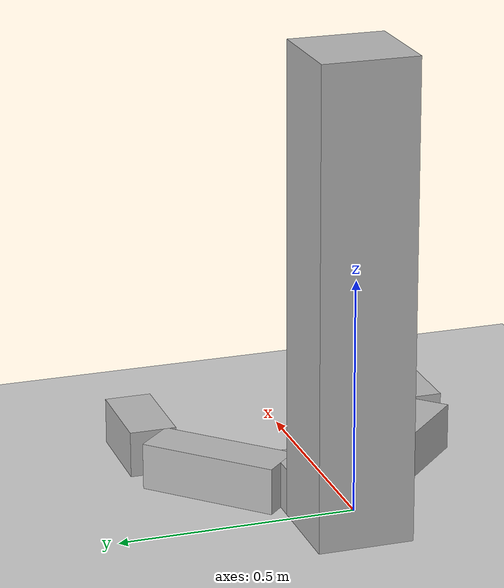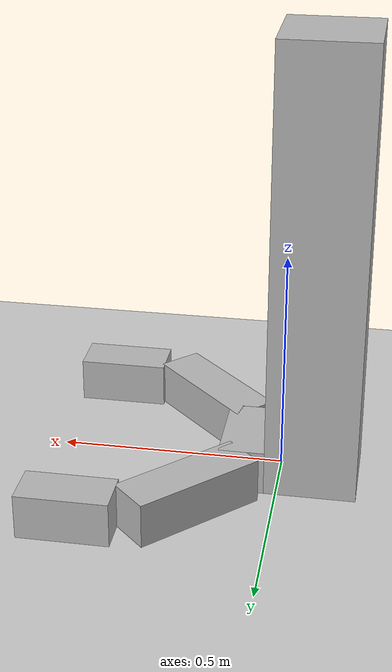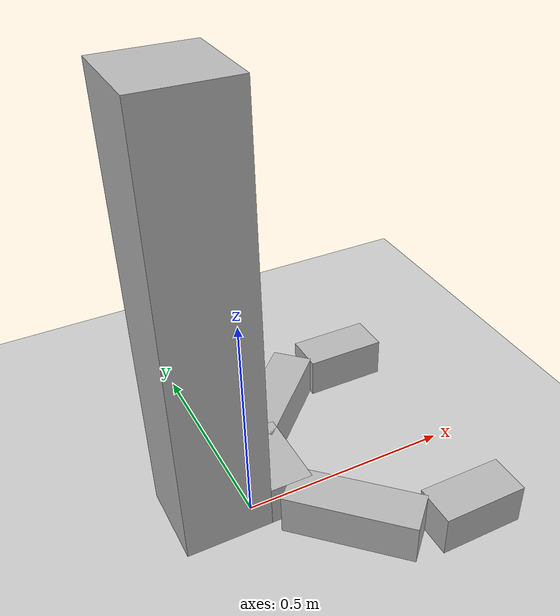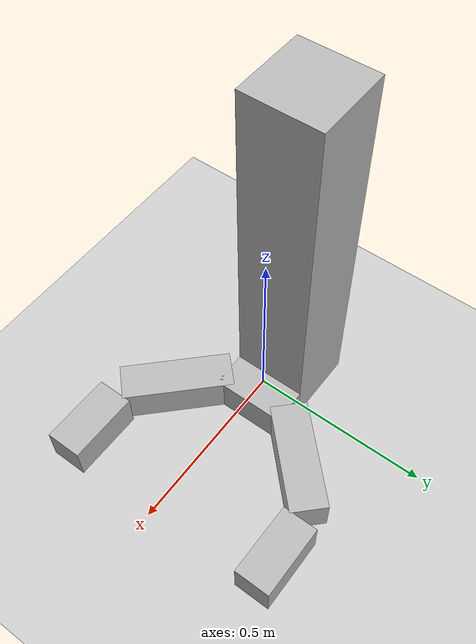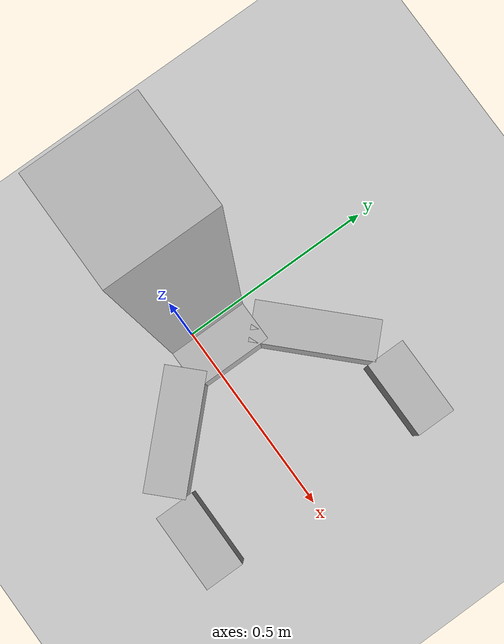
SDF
<sdf version="1.6">
 <world name="default">
  <model name="ground_plane">
   <static>1</static>
   <link name="link">
    <collision name="collision">
     <geometry><plane><normal>0 0 1</normal><size>100 100</size></plane></geometry>
     <surface><friction><ode><mu>100</mu><mu2>50</mu2></ode></friction></surface>
    </collision>
    <visual name="visual">
     <cast_shadows>0</cast_shadows>
     <geometry><plane><normal>0 0 1</normal><size>100 100</size></plane></geometry>
     <material>
      <script><uri>file://media/materials/scripts/gazebo.material</uri><name>Gazebo/Grey</name></script>
     </material>
    </visual>
   </link>
  </model>
  <light name="sun" type="directional">
   <pose>0 0 10 0 -0 0</pose>
   <diffuse>0.8 0.8 0.8 1</diffuse>
   <specular>0.2 0.2 0.2 1</specular>
   <attenuation>
    <range>1000</range>
    <constant>0.9</constant>
    <linear>0.01</linear>
    <quadratic>0.001</quadratic>
   </attenuation>
   <direction>-0.5 0.1 -0.9</direction>
  </light>
  <gravity>0 0 -9.8</gravity>
  <magnetic_field>6e-06 2.3e-05 -4.2e-05</magnetic_field>
  <atmosphere type="adiabatic"/>
  <physics name="default_physics" default="0" type="ode">
   <max_step_size>0.001</max_step_size>
   <real_time_factor>1</real_time_factor>
   <real_time_update_rate>1000</real_time_update_rate>
  </physics>
  <scene><ambient>0.4 0.4 0.4 1</ambient><background>0.7 0.7 0.7 1</background><shadows>1</shadows></scene>
  <audio><device>default</device></audio>
  <spherical_coordinates>
   <surface_model>EARTH_WGS84</surface_model>
   <latitude_deg>0</latitude_deg>
   <longitude_deg>0</longitude_deg>
   <elevation>0</elevation>
   <heading_deg>0</heading_deg>
  </spherical_coordinates>
  <model name="gripper_model">
   <link name="riser">
    <pose>-0.15 0 0.5 0 -0 0</pose>
    <inertial>
     <pose>0 0 -0.5 0 -0 0</pose>
     <inertia><ixx>0.01</ixx><ixy>0</ixy><ixz>0</ixz><iyy>0.01</iyy><iyz>0</iyz><izz>0.01</izz></inertia>
     <mass>10</mass>
    </inertial>
    <collision name="collision"><geometry><box><size>0.2 0.2 1</size></box></geometry></collision>
    <visual name="visual">
     <geometry><box><size>0.2 0.2 1</size></box></geometry>
     <material><script><uri>__default__</uri><name>__default__</name></script></material>
    </visual>
   </link>
   <link name="palm">
    <pose>0 0 0.05 0 -0 0</pose>
    <inertial>
     <inertia><ixx>0.01</ixx><ixy>0</ixy><ixz>0</ixz><iyy>0.01</iyy><iyz>0</iyz><izz>0.01</izz></inertia>
     <mass>0.5</mass>
    </inertial>
    <collision name="collision"><geometry><box><size>0.1 0.2 0.1</size></box></geometry></collision>
    <visual name="visual">
     <geometry><box><size>0.1 0.2 0.1</size></box></geometry>
     <material><script><uri>__default__</uri><name>__default__</name></script></material>
    </visual>
   </link>
   <link name="left_finger">
    <pose>0.1 0.2 0.05 0 0 -0.78539</pose>
    <inertial>
     <inertia><ixx>0.01</ixx><ixy>0</ixy><ixz>0</ixz><iyy>0.01</iyy><iyz>0</iyz><izz>0.01</izz></inertia>
     <mass>0.1</mass>
    </inertial>
    <collision name="collision"><geometry><box><size>0.1 0.3 0.1</size></box></geometry></collision>
    <visual name="visual">
     <geometry><box><size>0.1 0.3 0.1</size></box></geometry>
     <material><script><uri>__default__</uri><name>__default__</name></script></material>
    </visual>
   </link>
   <link name="left_finger_tip">
    <pose>0.336 0.3 0.05 0 -0 1.5707</pose>
    <inertial>
     <inertia><ixx>0.01</ixx><ixy>0</ixy><ixz>0</ixz><iyy>0.01</iyy><iyz>0</iyz><izz>0.01</izz></inertia>
     <mass>0.1</mass>
    </inertial>
    <collision name="collision"><geometry><box><size>0.1 0.2 0.1</size></box></geometry></collision>
    <visual name="visual">
     <geometry><box><size>0.1 0.2 0.1</size></box></geometry>
     <material><script><uri>__default__</uri><name>__default__</name></script></material>
    </visual>
   </link>
   <link name="right_finger">
    <pose>0.1 -0.2 0.05 0 -0 0.78539</pose>
    <inertial>
     <inertia><ixx>0.01</ixx><ixy>0</ixy><ixz>0</ixz><iyy>0.01</iyy><iyz>0</iyz><izz>0.01</izz></inertia>
     <mass>0.1</mass>
    </inertial>
    <collision name="collision"><geometry><box><size>0.1 0.3 0.1</size></box></geometry></collision>
    <visual name="visual">
     <geometry><box><size>0.1 0.3 0.1</size></box></geometry>
     <material><script><uri>__default__</uri><name>__default__</name></script></material>
    </visual>
   </link>
   <link name="right_finger_tip">
    <pose>0.336 -0.3 0.05 0 -0 1.5707</pose>
    <inertial>
     <inertia><ixx>0.01</ixx><ixy>0</ixy><ixz>0</ixz><iyy>0.01</iyy><iyz>0</iyz><izz>0.01</izz></inertia>
     <mass>0.1</mass>
    </inertial>
    <collision name="collision"><geometry><box><size>0.1 0.2 0.1</size></box></geometry></collision>
    <visual name="visual">
     <geometry><box><size>0.1 0.2 0.1</size></box></geometry>
     <material><script><uri>__default__</uri><name>__default__</name></script></material>
    </visual>
   </link>
   <static>0</static>
   <joint name="palm_left_finger" type="revolute">
    <pose>0 -0.15 0 0 -0 0</pose>
    <child>left_finger</child>
    <parent>palm</parent>
    <axis>
     <limit><lower>-0.4</lower><upper>0.4</upper></limit>
     <xyz>0 0 1</xyz>
     <use_parent_model_frame>1</use_parent_model_frame>
     <dynamics><spring_reference>0</spring_reference><spring_stiffness>0</spring_stiffness></dynamics>
    </axis>
   </joint>
   <joint name="left_finger_tip" type="revolute">
    <pose>0 0.1 0 0 -0 0</pose>
    <child>left_finger_tip</child>
    <parent>left_finger</parent>
    <axis>
     <limit><lower>-0.4</lower><upper>0.4</upper></limit>
     <xyz>0 0 1</xyz>
     <use_parent_model_frame>1</use_parent_model_frame>
     <dynamics><spring_reference>0</spring_reference><spring_stiffness>0</spring_stiffness></dynamics>
    </axis>
   </joint>
   <joint name="palm_right_finger" type="revolute">
    <pose>0 0.15 0 0 -0 0</pose>
    <child>right_finger</child>
    <parent>palm</parent>
    <axis>
     <limit><lower>-0.4</lower><upper>0.4</upper></limit>
     <xyz>0 0 1</xyz>
     <use_parent_model_frame>1</use_parent_model_frame>
     <dynamics><spring_reference>0</spring_reference><spring_stiffness>0</spring_stiffness></dynamics>
    </axis>
   </joint>
   <joint name="right_finger_tip" type="revolute">
    <pose>0 0.1 0 0 -0 0</pose>
    <child>right_finger_tip</child>
    <parent>right_finger</parent>
    <axis>
     <limit><lower>-0.4</lower><upper>0.4</upper></limit>
     <xyz>0 0 1</xyz>
     <use_parent_model_frame>1</use_parent_model_frame>
     <dynamics><spring_reference>0</spring_reference><spring_stiffness>0</spring_stiffness></dynamics>
    </axis>
   </joint>
   <joint name="palm_riser" type="prismatic">
    <child>palm</child>
    <parent>riser</parent>
    <axis>
     <limit><lower>0</lower><upper>0.9</upper></limit>
     <xyz>0 0 1</xyz>
     <use_parent_model_frame>1</use_parent_model_frame>
     <dynamics><spring_reference>0</spring_reference><spring_stiffness>0</spring_stiffness></dynamics>
    </axis>
   </joint>
   <pose>0.075025 0.037337 0 0 -1e-06 -0.001831</pose>
  </model>
 </world>
</sdf>
